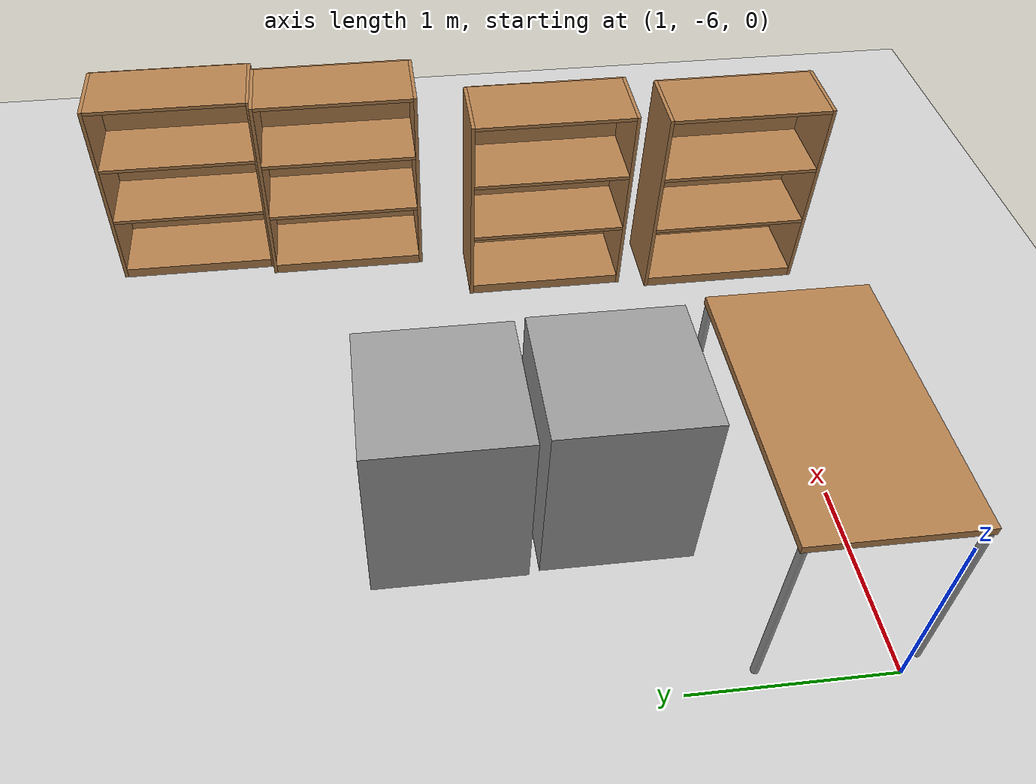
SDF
<sdf version="1.6">
 <world name="default">
  <model name="ground_plane">
   <static>1</static>
   <link name="link">
    <collision name="collision">
     <geometry><plane><normal>0 0 1</normal><size>100 100</size></plane></geometry>
     <surface><friction><ode><mu>100</mu><mu2>50</mu2></ode></friction></surface>
    </collision>
    <visual name="visual">
     <cast_shadows>0</cast_shadows>
     <geometry><plane><normal>0 0 1</normal><size>100 100</size></plane></geometry>
     <material>
      <script><uri>file://media/materials/scripts/gazebo.material</uri><name>Gazebo/Grey</name></script>
     </material>
    </visual>
   </link>
  </model>
  <model name="bookshelf_clone_clone">
   <static>1</static>
   <link name="link">
    <inertial><mass>1</mass></inertial>
    <collision name="back">
     <pose>0 0.005 0.6 0 -0 0</pose>
     <geometry><box><size>0.9 0.01 1.2</size></box></geometry>
    </collision>
    <visual name="visual1">
     <pose>0 0.005 0.6 0 -0 0</pose>
     <geometry><box><size>0.9 0.01 1.2</size></box></geometry>
     <material>
      <script><uri>file://media/materials/scripts/gazebo.material</uri><name>Gazebo/Wood</name></script>
     </material>
    </visual>
    <collision name="left_side">
     <pose>0.45 -0.195 0.6 0 -0 0</pose>
     <geometry><box><size>0.02 0.4 1.2</size></box></geometry>
    </collision>
    <visual name="visual2">
     <pose>0.45 -0.195 0.6 0 -0 0</pose>
     <geometry><box><size>0.02 0.4 1.2</size></box></geometry>
     <material>
      <script><uri>file://media/materials/scripts/gazebo.material</uri><name>Gazebo/Wood</name></script>
     </material>
    </visual>
    <collision name="right_side">
     <pose>-0.45 -0.195 0.6 0 -0 0</pose>
     <geometry><box><size>0.02 0.4 1.2</size></box></geometry>
    </collision>
    <visual name="visual3">
     <pose>-0.45 -0.195 0.6 0 -0 0</pose>
     <geometry><box><size>0.02 0.4 1.2</size></box></geometry>
     <material>
      <script><uri>file://media/materials/scripts/gazebo.material</uri><name>Gazebo/Wood</name></script>
     </material>
    </visual>
    <collision name="bottom">
     <pose>0 -0.195 0.03 0 -0 0</pose>
     <geometry><box><size>0.88 0.4 0.06</size></box></geometry>
    </collision>
    <visual name="visual4">
     <pose>0 -0.195 0.03 0 -0 0</pose>
     <geometry><box><size>0.88 0.4 0.06</size></box></geometry>
     <material>
      <script><uri>file://media/materials/scripts/gazebo.material</uri><name>Gazebo/Wood</name></script>
     </material>
    </visual>
    <collision name="top">
     <pose>0 -0.195 1.19 0 -0 0</pose>
     <geometry><box><size>0.88 0.4 0.02</size></box></geometry>
    </collision>
    <visual name="visual5">
     <pose>0 -0.195 1.19 0 -0 0</pose>
     <geometry><box><size>0.88 0.4 0.02</size></box></geometry>
     <material>
      <script><uri>file://media/materials/scripts/gazebo.material</uri><name>Gazebo/Wood</name></script>
     </material>
    </visual>
    <collision name="low_shelf">
     <pose>0 -0.195 0.43 0 -0 0</pose>
     <geometry><box><size>0.88 0.4 0.02</size></box></geometry>
    </collision>
    <visual name="visual6">
     <pose>0 -0.195 0.43 0 -0 0</pose>
     <geometry><box><size>0.88 0.4 0.02</size></box></geometry>
     <material>
      <script><uri>file://media/materials/scripts/gazebo.material</uri><name>Gazebo/Wood</name></script>
     </material>
    </visual>
    <collision name="high_shelf">
     <pose>0 -0.195 0.8 0 -0 0</pose>
     <geometry><box><size>0.88 0.4 0.02</size></box></geometry>
    </collision>
    <visual name="visual7">
     <pose>0 -0.195 0.8 0 -0 0</pose>
     <geometry><box><size>0.88 0.4 0.02</size></box></geometry>
     <material>
      <script><uri>file://media/materials/scripts/gazebo.material</uri><name>Gazebo/Wood</name></script>
     </material>
    </visual>
   </link>
   <pose>4.45395 -2.71346 0 0 0 -1.56896</pose>
  </model>
  <model name="bookshelf_clone_clone_0">
   <static>1</static>
   <link name="link">
    <inertial><mass>1</mass></inertial>
    <collision name="back">
     <pose>0 0.005 0.6 0 -0 0</pose>
     <geometry><box><size>0.9 0.01 1.2</size></box></geometry>
    </collision>
    <visual name="visual1">
     <pose>0 0.005 0.6 0 -0 0</pose>
     <geometry><box><size>0.9 0.01 1.2</size></box></geometry>
     <material>
      <script><uri>file://media/materials/scripts/gazebo.material</uri><name>Gazebo/Wood</name></script>
     </material>
    </visual>
    <collision name="left_side">
     <pose>0.45 -0.195 0.6 0 -0 0</pose>
     <geometry><box><size>0.02 0.4 1.2</size></box></geometry>
    </collision>
    <visual name="visual2">
     <pose>0.45 -0.195 0.6 0 -0 0</pose>
     <geometry><box><size>0.02 0.4 1.2</size></box></geometry>
     <material>
      <script><uri>file://media/materials/scripts/gazebo.material</uri><name>Gazebo/Wood</name></script>
     </material>
    </visual>
    <collision name="right_side">
     <pose>-0.45 -0.195 0.6 0 -0 0</pose>
     <geometry><box><size>0.02 0.4 1.2</size></box></geometry>
    </collision>
    <visual name="visual3">
     <pose>-0.45 -0.195 0.6 0 -0 0</pose>
     <geometry><box><size>0.02 0.4 1.2</size></box></geometry>
     <material>
      <script><uri>file://media/materials/scripts/gazebo.material</uri><name>Gazebo/Wood</name></script>
     </material>
    </visual>
    <collision name="bottom">
     <pose>0 -0.195 0.03 0 -0 0</pose>
     <geometry><box><size>0.88 0.4 0.06</size></box></geometry>
    </collision>
    <visual name="visual4">
     <pose>0 -0.195 0.03 0 -0 0</pose>
     <geometry><box><size>0.88 0.4 0.06</size></box></geometry>
     <material>
      <script><uri>file://media/materials/scripts/gazebo.material</uri><name>Gazebo/Wood</name></script>
     </material>
    </visual>
    <collision name="top">
     <pose>0 -0.195 1.19 0 -0 0</pose>
     <geometry><box><size>0.88 0.4 0.02</size></box></geometry>
    </collision>
    <visual name="visual5">
     <pose>0 -0.195 1.19 0 -0 0</pose>
     <geometry><box><size>0.88 0.4 0.02</size></box></geometry>
     <material>
      <script><uri>file://media/materials/scripts/gazebo.material</uri><name>Gazebo/Wood</name></script>
     </material>
    </visual>
    <collision name="low_shelf">
     <pose>0 -0.195 0.43 0 -0 0</pose>
     <geometry><box><size>0.88 0.4 0.02</size></box></geometry>
    </collision>
    <visual name="visual6">
     <pose>0 -0.195 0.43 0 -0 0</pose>
     <geometry><box><size>0.88 0.4 0.02</size></box></geometry>
     <material>
      <script><uri>file://media/materials/scripts/gazebo.material</uri><name>Gazebo/Wood</name></script>
     </material>
    </visual>
    <collision name="high_shelf">
     <pose>0 -0.195 0.8 0 -0 0</pose>
     <geometry><box><size>0.88 0.4 0.02</size></box></geometry>
    </collision>
    <visual name="visual7">
     <pose>0 -0.195 0.8 0 -0 0</pose>
     <geometry><box><size>0.88 0.4 0.02</size></box></geometry>
     <material>
      <script><uri>file://media/materials/scripts/gazebo.material</uri><name>Gazebo/Wood</name></script>
     </material>
    </visual>
   </link>
   <pose>4.39338 -3.63126 0 0 0 -1.56896</pose>
  </model>
  <model name="bookshelf_clone_clone_2">
   <static>1</static>
   <link name="link">
    <inertial><mass>1</mass></inertial>
    <collision name="back">
     <pose>0 0.005 0.6 0 -0 0</pose>
     <geometry><box><size>0.9 0.01 1.2</size></box></geometry>
    </collision>
    <visual name="visual1">
     <pose>0 0.005 0.6 0 -0 0</pose>
     <geometry><box><size>0.9 0.01 1.2</size></box></geometry>
     <material>
      <script><uri>file://media/materials/scripts/gazebo.material</uri><name>Gazebo/Wood</name></script>
     </material>
    </visual>
    <collision name="left_side">
     <pose>0.45 -0.195 0.6 0 -0 0</pose>
     <geometry><box><size>0.02 0.4 1.2</size></box></geometry>
    </collision>
    <visual name="visual2">
     <pose>0.45 -0.195 0.6 0 -0 0</pose>
     <geometry><box><size>0.02 0.4 1.2</size></box></geometry>
     <material>
      <script><uri>file://media/materials/scripts/gazebo.material</uri><name>Gazebo/Wood</name></script>
     </material>
    </visual>
    <collision name="right_side">
     <pose>-0.45 -0.195 0.6 0 -0 0</pose>
     <geometry><box><size>0.02 0.4 1.2</size></box></geometry>
    </collision>
    <visual name="visual3">
     <pose>-0.45 -0.195 0.6 0 -0 0</pose>
     <geometry><box><size>0.02 0.4 1.2</size></box></geometry>
     <material>
      <script><uri>file://media/materials/scripts/gazebo.material</uri><name>Gazebo/Wood</name></script>
     </material>
    </visual>
    <collision name="bottom">
     <pose>0 -0.195 0.03 0 -0 0</pose>
     <geometry><box><size>0.88 0.4 0.06</size></box></geometry>
    </collision>
    <visual name="visual4">
     <pose>0 -0.195 0.03 0 -0 0</pose>
     <geometry><box><size>0.88 0.4 0.06</size></box></geometry>
     <material>
      <script><uri>file://media/materials/scripts/gazebo.material</uri><name>Gazebo/Wood</name></script>
     </material>
    </visual>
    <collision name="top">
     <pose>0 -0.195 1.19 0 -0 0</pose>
     <geometry><box><size>0.88 0.4 0.02</size></box></geometry>
    </collision>
    <visual name="visual5">
     <pose>0 -0.195 1.19 0 -0 0</pose>
     <geometry><box><size>0.88 0.4 0.02</size></box></geometry>
     <material>
      <script><uri>file://media/materials/scripts/gazebo.material</uri><name>Gazebo/Wood</name></script>
     </material>
    </visual>
    <collision name="low_shelf">
     <pose>0 -0.195 0.43 0 -0 0</pose>
     <geometry><box><size>0.88 0.4 0.02</size></box></geometry>
    </collision>
    <visual name="visual6">
     <pose>0 -0.195 0.43 0 -0 0</pose>
     <geometry><box><size>0.88 0.4 0.02</size></box></geometry>
     <material>
      <script><uri>file://media/materials/scripts/gazebo.material</uri><name>Gazebo/Wood</name></script>
     </material>
    </visual>
    <collision name="high_shelf">
     <pose>0 -0.195 0.8 0 -0 0</pose>
     <geometry><box><size>0.88 0.4 0.02</size></box></geometry>
    </collision>
    <visual name="visual7">
     <pose>0 -0.195 0.8 0 -0 0</pose>
     <geometry><box><size>0.88 0.4 0.02</size></box></geometry>
     <material>
      <script><uri>file://media/materials/scripts/gazebo.material</uri><name>Gazebo/Wood</name></script>
     </material>
    </visual>
   </link>
   <pose>4.07843 -4.81601 0 0 0 -1.56896</pose>
  </model>
  <model name="bookshelf_clone_clone_3">
   <static>1</static>
   <link name="link">
    <inertial><mass>1</mass></inertial>
    <collision name="back">
     <pose>0 0.005 0.6 0 -0 0</pose>
     <geometry><box><size>0.9 0.01 1.2</size></box></geometry>
    </collision>
    <visual name="visual1">
     <pose>0 0.005 0.6 0 -0 0</pose>
     <geometry><box><size>0.9 0.01 1.2</size></box></geometry>
     <material>
      <script><uri>file://media/materials/scripts/gazebo.material</uri><name>Gazebo/Wood</name></script>
     </material>
    </visual>
    <collision name="left_side">
     <pose>0.45 -0.195 0.6 0 -0 0</pose>
     <geometry><box><size>0.02 0.4 1.2</size></box></geometry>
    </collision>
    <visual name="visual2">
     <pose>0.45 -0.195 0.6 0 -0 0</pose>
     <geometry><box><size>0.02 0.4 1.2</size></box></geometry>
     <material>
      <script><uri>file://media/materials/scripts/gazebo.material</uri><name>Gazebo/Wood</name></script>
     </material>
    </visual>
    <collision name="right_side">
     <pose>-0.45 -0.195 0.6 0 -0 0</pose>
     <geometry><box><size>0.02 0.4 1.2</size></box></geometry>
    </collision>
    <visual name="visual3">
     <pose>-0.45 -0.195 0.6 0 -0 0</pose>
     <geometry><box><size>0.02 0.4 1.2</size></box></geometry>
     <material>
      <script><uri>file://media/materials/scripts/gazebo.material</uri><name>Gazebo/Wood</name></script>
     </material>
    </visual>
    <collision name="bottom">
     <pose>0 -0.195 0.03 0 -0 0</pose>
     <geometry><box><size>0.88 0.4 0.06</size></box></geometry>
    </collision>
    <visual name="visual4">
     <pose>0 -0.195 0.03 0 -0 0</pose>
     <geometry><box><size>0.88 0.4 0.06</size></box></geometry>
     <material>
      <script><uri>file://media/materials/scripts/gazebo.material</uri><name>Gazebo/Wood</name></script>
     </material>
    </visual>
    <collision name="top">
     <pose>0 -0.195 1.19 0 -0 0</pose>
     <geometry><box><size>0.88 0.4 0.02</size></box></geometry>
    </collision>
    <visual name="visual5">
     <pose>0 -0.195 1.19 0 -0 0</pose>
     <geometry><box><size>0.88 0.4 0.02</size></box></geometry>
     <material>
      <script><uri>file://media/materials/scripts/gazebo.material</uri><name>Gazebo/Wood</name></script>
     </material>
    </visual>
    <collision name="low_shelf">
     <pose>0 -0.195 0.43 0 -0 0</pose>
     <geometry><box><size>0.88 0.4 0.02</size></box></geometry>
    </collision>
    <visual name="visual6">
     <pose>0 -0.195 0.43 0 -0 0</pose>
     <geometry><box><size>0.88 0.4 0.02</size></box></geometry>
     <material>
      <script><uri>file://media/materials/scripts/gazebo.material</uri><name>Gazebo/Wood</name></script>
     </material>
    </visual>
    <collision name="high_shelf">
     <pose>0 -0.195 0.8 0 -0 0</pose>
     <geometry><box><size>0.88 0.4 0.02</size></box></geometry>
    </collision>
    <visual name="visual7">
     <pose>0 -0.195 0.8 0 -0 0</pose>
     <geometry><box><size>0.88 0.4 0.02</size></box></geometry>
     <material>
      <script><uri>file://media/materials/scripts/gazebo.material</uri><name>Gazebo/Wood</name></script>
     </material>
    </visual>
   </link>
   <pose>4.02813 -5.88562 0 0 0 -1.56896</pose>
  </model>
  <model name="table_clone_clone_1_clone">
   <static>0</static>
   <link name="link">
    <collision name="surface">
     <pose>0 0 1 0 -0 0</pose>
     <geometry><box><size>1.5 0.8 0.03</size></box></geometry>
     <surface><friction><ode><mu>0.6</mu><mu2>0.6</mu2></ode></friction></surface>
    </collision>
    <visual name="visual1">
     <pose>0 0 1 0 -0 0</pose>
     <geometry><box><size>1.4 0.8 0.04</size></box></geometry>
     <material>
      <script><uri>file://media/materials/scripts/gazebo.material</uri><name>Gazebo/Wood</name></script>
     </material>
    </visual>
    <collision name="front_left_leg">
     <pose>0.68 0.38 0.5 0 -0 0</pose>
     <geometry><cylinder><radius>0.02</radius><length>1</length></cylinder></geometry>
    </collision>
    <visual name="front_left_leg">
     <pose>0.68 0.38 0.5 0 -0 0</pose>
     <geometry><cylinder><radius>0.02</radius><length>1</length></cylinder></geometry>
     <material>
      <script><uri>file://media/materials/scripts/gazebo.material</uri><name>Gazebo/Grey</name></script>
     </material>
    </visual>
    <collision name="front_right_leg">
     <pose>0.68 -0.38 0.5 0 -0 0</pose>
     <geometry><cylinder><radius>0.02</radius><length>1</length></cylinder></geometry>
    </collision>
    <visual name="front_right_leg">
     <pose>0.68 -0.38 0.5 0 -0 0</pose>
     <geometry><cylinder><radius>0.02</radius><length>1</length></cylinder></geometry>
     <material>
      <script><uri>file://media/materials/scripts/gazebo.material</uri><name>Gazebo/Grey</name></script>
     </material>
    </visual>
    <collision name="back_right_leg">
     <pose>-0.68 -0.38 0.5 0 -0 0</pose>
     <geometry><cylinder><radius>0.02</radius><length>1</length></cylinder></geometry>
    </collision>
    <visual name="back_right_leg">
     <pose>-0.68 -0.38 0.5 0 -0 0</pose>
     <geometry><cylinder><radius>0.02</radius><length>1</length></cylinder></geometry>
     <material>
      <script><uri>file://media/materials/scripts/gazebo.material</uri><name>Gazebo/Grey</name></script>
     </material>
    </visual>
    <collision name="back_left_leg">
     <pose>-0.68 0.38 0.5 0 -0 0</pose>
     <geometry><cylinder><radius>0.02</radius><length>1</length></cylinder></geometry>
    </collision>
    <visual name="back_left_leg">
     <pose>-0.68 0.38 0.5 0 -0 0</pose>
     <geometry><cylinder><radius>0.02</radius><length>1</length></cylinder></geometry>
     <material>
      <script><uri>file://media/materials/scripts/gazebo.material</uri><name>Gazebo/Grey</name></script>
     </material>
    </visual>
    <inertial>
     <inertia><ixx>1</ixx><ixy>0</ixy><ixz>0</ixz><iyy>1</iyy><iyz>0</iyz><izz>1</izz></inertia>
     <mass>1</mass>
    </inertial>
   </link>
   <pose>1.76651 -5.72753 -7e-06 0 -0 0</pose>
  </model>
  <model name="unit_box_1">
   <pose>2.07484 -4.84556 0.499871 7e-06 -2e-06 6e-05</pose>
   <link name="link">
    <inertial>
     <mass>1</mass>
     <inertia>
      <ixx>0.166667</ixx>
      <ixy>0</ixy>
      <ixz>0</ixz>
      <iyy>0.166667</iyy>
      <iyz>0</iyz>
      <izz>0.166667</izz>
     </inertia>
    </inertial>
    <collision name="collision"><geometry><box><size>0.738797 0.764801 1</size></box></geometry></collision>
    <visual name="visual">
     <geometry><box><size>0.738797 0.764801 1</size></box></geometry>
     <material>
      <script><name>Gazebo/Grey</name><uri>file://media/materials/scripts/gazebo.material</uri></script>
     </material>
    </visual>
   </link>
  </model>
  <model name="unit_box_1_clone_0">
   <pose>2.05736 -4.02753 0.499907 4e-05 6e-06 9.2e-05</pose>
   <link name="link">
    <inertial>
     <mass>1</mass>
     <inertia>
      <ixx>0.166667</ixx>
      <ixy>0</ixy>
      <ixz>0</ixz>
      <iyy>0.166667</iyy>
      <iyz>0</iyz>
      <izz>0.166667</izz>
     </inertia>
    </inertial>
    <collision name="collision"><geometry><box><size>0.738798 0.764801 1</size></box></geometry></collision>
    <visual name="visual">
     <geometry><box><size>0.738798 0.764801 1</size></box></geometry>
     <material>
      <script><name>Gazebo/Grey</name><uri>file://media/materials/scripts/gazebo.material</uri></script>
     </material>
    </visual>
   </link>
  </model>
 </world>
</sdf>
